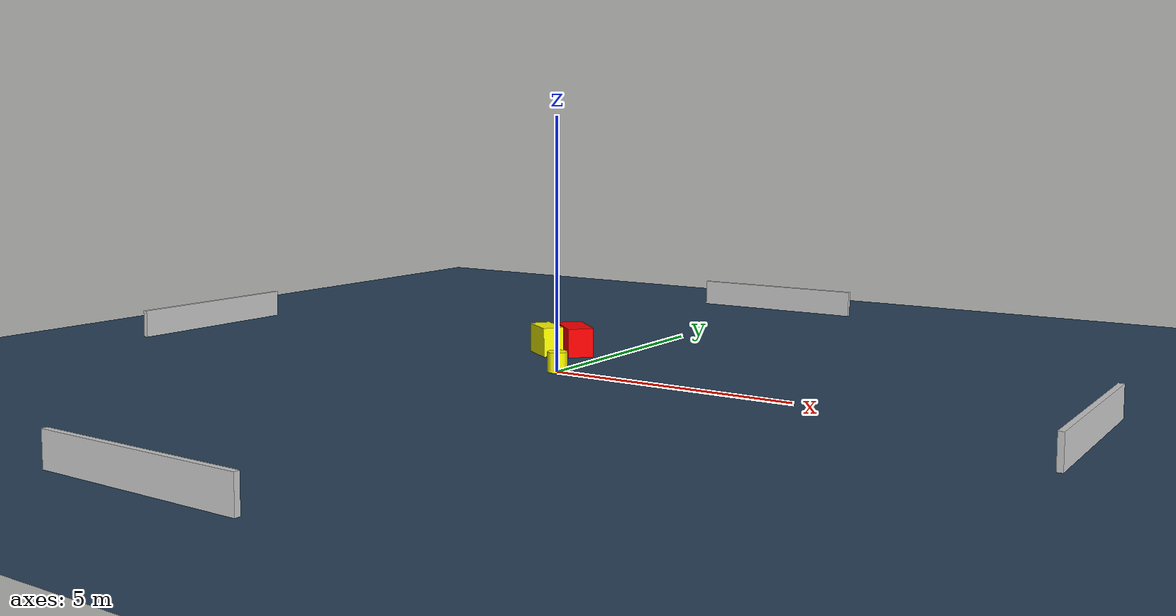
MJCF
<?xml version="1.0" ?>
<mujoco model="generated_environment">
  <option timestep="0.01" integrator="RK4" cone="elliptic"/>
  <default>
    <geom density="1"/>
  </default>
  <asset>
    <texture builtin="gradient" height="3072" name="skybox" rgb1="0.3 0.5 0.7" rgb2="0 0 0" type="skybox" width="512"/>
    <texture builtin="checker" height="300" name="groundplane" rgb1="0.2 0.3 0.4" rgb2="0.1 0.2 0.3" type="2d" width="300"/>
    <material name="groundplane" reflectance="0.2" texrepeat="5 5" texture="groundplane"/>
  </asset>
  <worldbody>
    <light dir="0 0 -1" directional="true" pos="0 0 1.5"/>
    <geom condim="3" friction="0.5 0.005 0.001" material="groundplane" name="floor" pos="0 0 0" size="0 0 0.05" type="plane"/>
    <body name="walls">
      <geom name="wall_1" condim="4" pos="-10.0 0.0 0.3" rgba="0.800000011920929 0.800000011920929 0.800000011920929 1.0" size="0.05 2.0 0.3" type="box"/>
      <geom name="wall_2" condim="4" pos="10.0 0.0 0.3" rgba="0.800000011920929 0.800000011920929 0.800000011920929 1.0" size="0.05 2.0 0.3" type="box"/>
      <geom name="wall_3" condim="4" pos="0.0 -10.0 0.3" rgba="0.800000011920929 0.800000011920929 0.800000011920929 1.0" size="2.0 0.05 0.3" type="box"/>
      <geom name="wall_4" condim="4" pos="0.0 10.0 0.3" rgba="0.800000011920929 0.800000011920929 0.800000011920929 1.0" size="2.0 0.05 0.3" type="box"/>
    </body>
    <body name="robot">
      <joint name="joint_x" type="slide" pos="0 0 0" axis="1 0 0"/>
      <joint name="joint_y" type="slide" pos="0 0 0" axis="0 1 0"/>
      <geom name="robot" type="cylinder" pos="0.0 0.0 0.2" size="0.2 0.2 0.0" mass="5.0" friction="1.0 0.005 0.0001" condim="4" rgba="1.0 1.0 0.0 1.0"/>
    </body>
    <body name="obstacle_1_movable">
      <geom name="obstacle_1_movable" condim="4" pos="-1.3109682768128612 1.5027247808495934 0.3" euler="0 0 56.884323952034116" friction="0.0 0.005 0.001" rgba="1.0 1.0 0.0 1.0" size="0.2183477148965579 0.3878640515230978 0.3" type="box" mass="0.1"/>
      <joint type="free"/>
    </body>
    <body name="obstacle_2_static">
      <geom name="obstacle_2_static" condim="4" pos="-0.8072179130303171 1.8252013088338277 0.3" euler="0 0 138.54974704292974" friction="0.0 0.005 0.001" rgba="1.0 0.0 0.0 1.0" size="0.48848526233529166 0.27226651121059675 0.3" type="box"/>
    </body>
  </worldbody>
  <actuator>
    <motor name="actuator_x" joint="joint_x" gear="1" ctrlrange="-1 1"/>
    <motor name="actuator_y" joint="joint_y" gear="1" ctrlrange="-1 1"/>
  </actuator>
</mujoco>
